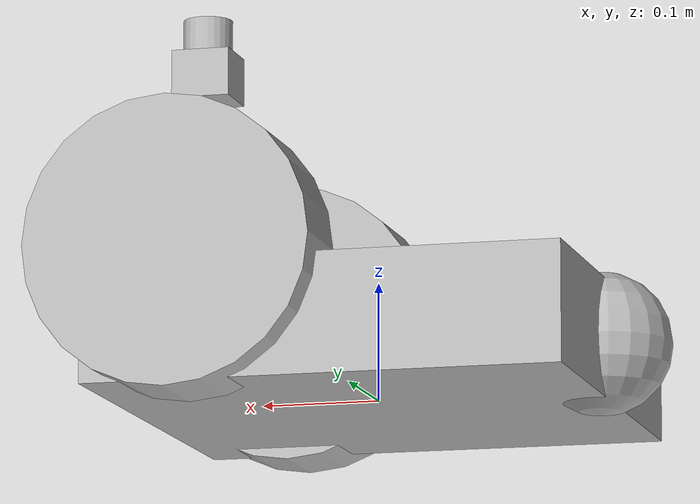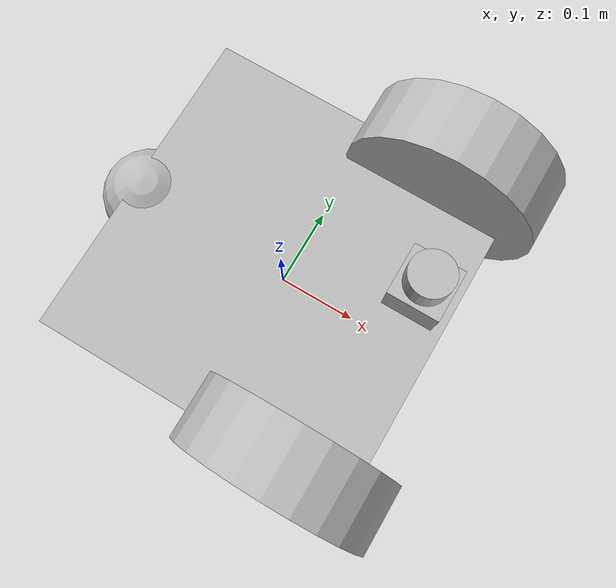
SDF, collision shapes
<?xml version='1.0'?>
<sdf version='1.4'>
  <model name="mobile_warehouse_robot">
     <!-- If true, physics engine will ignore -->
     <static>false</static>

       <!-- Add the rectangular base of the robot -->
       <link name='chassis'>

         <!--Position of the center will be: -->
         <!--x=0 meters, y=0 meters, z=0.04 meters-->
         <!--Orientation of the center will be: -->
         <!--Roll=0 rad, Pitch=0 rad, Yaw=0 rad -->
         <pose>0 0 .04 0 0 0</pose>

           <!-- Specify the shape for collisions -->
           <collision name='collision'>
             <geometry>
               <box>
                 <!-- Box is 0.4 meters in length -->
                 <!-- 0.4 meters in width -->
                 <!-- 0.1 meters in height -->
                 <size>.4 .4 .1</size>
               </box>
             </geometry>
           </collision>

           <!-- Specify the shape for visualization -->
           <visual name='visual'>
             <pose> 0 0 0.02 0 0 0 </pose>
             <geometry>
               <mesh>
                 <uri>model://pioneer3at/meshes/chassis.dae</uri>
                 <scale>0.9 0.7 0.5 </scale>
               </mesh>
             </geometry>
           </visual>

           <!-- Add a caster wheel -->
           <collision name='caster_collision'>
             <pose>-0.19 0 0 0 0 0</pose>
             <geometry>
               <sphere>
                 <radius>.06</radius>
               </sphere>
             </geometry>

             <surface>
               <friction>
                 <ode>
                   <!-- Coefficients of friction -->
                   <mu>0</mu>
                   <mu2>0</mu2>
                   <!-- Force dependent slip -->
                   <slip1>1.0</slip1>
                   <slip2>1.0</slip2>
                 </ode>
               </friction>
             </surface>
           </collision>

           <visual name='caster_visual'>
             <pose>-0.19 0 0 0 0 0</pose>
             <geometry>
               <sphere>
                 <radius>.06</radius>
               </sphere>
             </geometry>
           </visual>
       </link>

       <!-- Add the left wheel -->
       <link name="left_wheel">
         <pose>0.12 0.19 0.1 0 1.5707 1.5707</pose>
         <collision name="collision">
           <geometry>
             <cylinder>
               <radius>.12</radius>
               <length>.08</length>
             </cylinder>
           </geometry>
         </collision>
         <visual name="visual">
           <geometry>
             <mesh>
              <uri>model://pioneer3at/meshes/wheel.dae</uri>
              <scale>1 1 1</scale>
            </mesh>
           </geometry>
         </visual>
       </link>

       <!-- Add the right wheel -->
       <link name="right_wheel">
         <pose>0.12 -0.19 0.1 0 1.5707 1.5707</pose>
         <collision name="collision">
           <geometry>
             <cylinder>
               <radius>.12</radius>
               <length>.08</length>
             </cylinder>
           </geometry>
         </collision>
         <visual name="visual">
           <geometry>
             <mesh>
              <uri>model://pioneer3at/meshes/wheel.dae</uri>
              <scale>-1 1 1</scale>
            </mesh>
           </geometry>
         </visual>
       </link>

       <!-- Add the laser range finder -->
       <link name="laser_link">
         <inertial>
           <!-- Mass of the laser range finder in kg -->
           <mass>0.1</mass>
         </inertial>
         <!-- Position is towards the front of the robot -->
         <!-- Laser finder is mounted on top -->
         <pose>0.15 0 0.30 0 0 0</pose>

         <!-- Add a mesh to make it more visually appealing -->
         <visual name="visual">
           <geometry>
             <mesh>
               <uri>model://hokuyo/meshes/hokuyo.dae</uri>
             </mesh>
           </geometry>
         </visual>

         <!-- Collision properties of the base of the laser range finder-->
         <collision name="collision-base">
           <pose>0 0 -0.0145 0 0 0</pose>
           <geometry>
             <box>
               <size>0.05 0.05 0.041</size>
             </box>
           </geometry>
         </collision>
         <!-- Collision properties of the top of the laser range finder-->
         <collision name="collision-top">
           <pose>0 0 0.0205 0 0 0</pose>
           <geometry>
             <cylinder>
               <radius>0.021</radius>
               <length>0.029</length>
             </cylinder>
           </geometry>
         </collision>

         <!-- Describes the type and properties of the sensor -->
	 <sensor name="laser" type="ray">
	   <pose>0.01 0 0.0175 0 -0 0</pose>
           <ray>
             <scan>
               <horizontal>
                 <samples>181</samples>
                 <resolution>1</resolution>
                 <min_angle>-1.57080</min_angle>
                 <max_angle>1.57080</max_angle>
               </horizontal>
             </scan>
             <range>
               <min>0.08</min>
               <max>10</max>
               <resolution>0.05</resolution>
             </range>
           </ray>
           <always_on>1</always_on>
           <update_rate>10</update_rate>
           <visualize>true</visualize>

           <plugin name='laser' filename='libgazebo_ros_ray_sensor.so'>
             <ros>
               <namespace>/demo</namespace>
               <argument>--ros-args --remap ~/out:=scan</argument>
             </ros>
             <output_type>sensor_msgs/LaserScan</output_type>
           </plugin>
	 </sensor>
       </link>

       <!-- Add motor for the left wheel -->
       <joint type="revolute" name="left_wheel_hinge">
         <pose>0 0 -0.03 0 0 0</pose>
         <child>left_wheel</child>
         <parent>chassis</parent>
         <axis>
           <xyz>0 1 0</xyz>
         </axis>
       </joint>

       <!-- Add motor for the right wheel -->
       <joint type="revolute" name="right_wheel_hinge">
         <pose>0 0 0.03 0 0 0</pose>
         <child>right_wheel</child>
         <parent>chassis</parent>
         <axis>
           <xyz>0 1 0</xyz>
         </axis>
       </joint>

       <!-- Connect laser range finder to the robot's body -->
       <joint type="fixed" name="laser_joint">
         <child>laser_link</child>
         <parent>chassis</parent>
       </joint>

       <!-- Controls the differential drive robot -->
       <plugin name='diff_drive' filename='libgazebo_ros_diff_drive.so'>
         <ros>
           <namespace>/demo</namespace>
           <remapping>cmd_vel:=cmd_vel</remapping>
           <remapping>odom:=odom</remapping>
         </ros>

         <!-- wheels -->
         <left_joint>left_wheel_hinge</left_joint>
         <right_joint>right_wheel_hinge</right_joint>

         <!-- kinematics -->
         <wheel_separation>0.26</wheel_separation>
         <wheel_diameter>0.2</wheel_diameter>

         <!-- limits -->
         <max_wheel_torque>20</max_wheel_torque>
         <max_wheel_acceleration>1.0</max_wheel_acceleration>

         <!-- output -->
         <publish_odom>true</publish_odom>
         <publish_odom_tf>true</publish_odom_tf>
         <publish_wheel_tf>true</publish_wheel_tf>

         <odometry_frame>odom</odometry_frame>
         <robot_base_frame>chassis</robot_base_frame>
       </plugin>
  </model>
</sdf>
